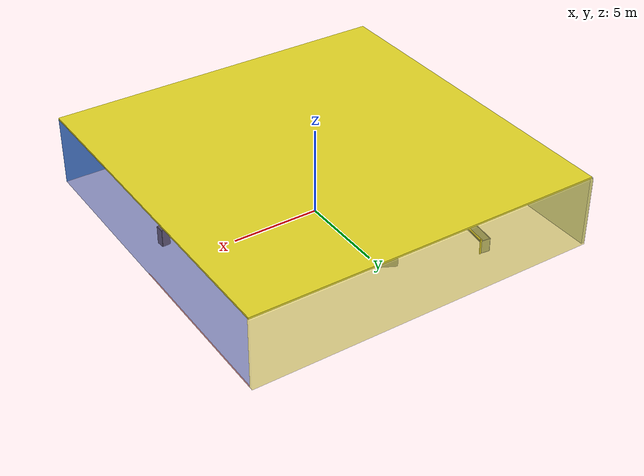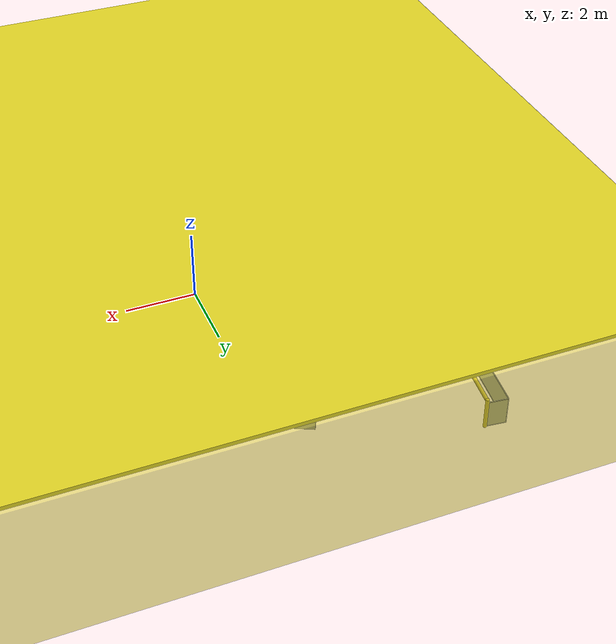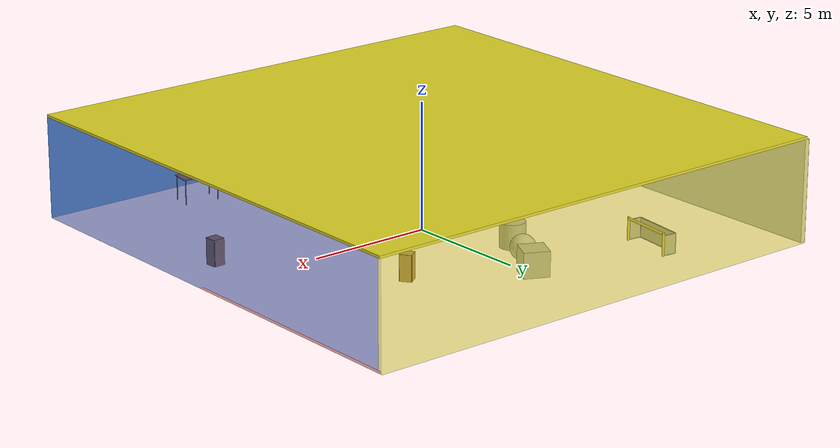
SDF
<sdf version="1.4">
 <world name="default">
  <physics type="ode">
   <max_step_size>0.001</max_step_size>
   <real_time_factor>1</real_time_factor>
   <real_time_update_rate>1000</real_time_update_rate>
   <gravity>0 0 -9.8</gravity>
  </physics>
  <scene><ambient>0.4 0.4 0.4 1</ambient><background>0.7 0.7 0.7 1</background><shadows>1</shadows></scene>
  <model name="Surrounding">
   <static>1</static>
   <link name="Ceiling">
    <collision name="Ceiling_Collision"><geometry><box><size>20 20 0.1</size></box></geometry></collision>
    <visual name="Ceiling_Visual">
     <geometry><box><size>20 20 0.1</size></box></geometry>
     <material>
      <script><uri>file://media/materials/scripts/gazebo.material</uri><name>Gazebo/YellowGlow</name></script>
     </material>
    </visual>
    <pose>0 0 4.05 0 0 0</pose>
   </link>
   <link name="Wall_South">
    <collision name="Wall_South_Collision">
     <geometry><box><size>20 0 4</size></box></geometry>
     <pose>0 0 2 0 -0 0</pose>
    </collision>
    <visual name="Wall_South_Visual">
     <pose>0 0 2 0 -0 0</pose>
     <geometry><box><size>20 0 4</size></box></geometry>
     <material>
      <script><uri>file://media/materials/scripts/gazebo.material</uri><name>Gazebo/SkyBlue</name></script>
     </material>
    </visual>
    <velocity_decay><linear>0</linear><angular>0</angular></velocity_decay>
    <pose>0 -10 0 0 -0 0</pose>
   </link>
   <link name="Wall_East">
    <collision name="Wall_21_Collision">
     <geometry><box><size>20 0 4</size></box></geometry>
     <pose>0 0 2 0 -0 0</pose>
    </collision>
    <visual name="Wall_21_Visual">
     <pose>0 0 2 0 -0 0</pose>
     <geometry><box><size>20 0 4</size></box></geometry>
     <material>
      <script><uri>file://media/materials/scripts/gazebo.material</uri><name>Gazebo/BlueTransparent</name></script>
     </material>
    </visual>
    <velocity_decay><linear>0</linear><angular>0</angular></velocity_decay>
    <pose>10 0 0 0 -0 1.5708</pose>
   </link>
   <link name="Wall_North">
    <collision name="Wall_22_Collision">
     <geometry><box><size>20 0.2 4</size></box></geometry>
     <pose>0 0 2 0 -0 0</pose>
    </collision>
    <visual name="Wall_22_Visual">
     <pose>0 0 2 0 -0 0</pose>
     <geometry><box><size>20 0.2 4</size></box></geometry>
     <material>
      <script>
       <uri>file://media/materials/scripts/gazebo.material</uri>
       <name>Gazebo/YellowTransparent</name>
      </script>
     </material>
    </visual>
    <velocity_decay><linear>0</linear><angular>0</angular></velocity_decay>
    <pose>0 10 0 0 -0 0</pose>
   </link>
   <link name="Wall_West">
    <collision name="Wall_23_Collision">
     <geometry><box><size>20 0.2 4</size></box></geometry>
     <pose>0 0 2 0 -0 0</pose>
    </collision>
    <visual name="Wall_23_Visual">
     <pose>0 0 2 0 -0 0</pose>
     <geometry><box><size>20 0.2 4</size></box></geometry>
     <material>
      <script><uri>file://media/materials/scripts/gazebo.material</uri><name>Gazebo/White</name></script>
     </material>
    </visual>
    <velocity_decay><linear>0</linear><angular>0</angular></velocity_decay>
    <pose>-10 0 0 0 0 -1.5708</pose>
   </link>
   <link name="Ground_link">
    <collision name="collision">
     <pose>0 0 .05 0 -0 0</pose>
     <geometry><box><size>20 20 0.1</size></box></geometry>
    </collision>
    <visual name="visual">
     <pose>0 0 .05 0 -0 0</pose>
     <geometry><box><size>20 20 0.1</size></box></geometry>
     <material>
      <script><uri>file://media/materials/scripts/gazebo.material</uri><name>Gazebo/RedTransparent</name></script>
     </material>
    </visual>
   </link>
   <static>1</static>
  </model>
  <spherical_coordinates>
   <surface_model>EARTH_WGS84</surface_model>
   <latitude_deg>0</latitude_deg>
   <longitude_deg>0</longitude_deg>
   <elevation>0</elevation>
   <heading_deg>0</heading_deg>
  </spherical_coordinates>
  <light name="lightball_0" type="diffuse">
   <diffuse>0.8 0.8 0.8 1</diffuse>
   <specular>0.2 0.2 0.2 1</specular>
   <attenuation>
    <range>100</range>
    <constant>0.7</constant>
    <linear>0.01</linear>
    <quadratic>0.001</quadratic>
   </attenuation>
   <direction>-0.5 0.1 -0.9</direction>
   <pose>3.07171105056 -2.03453169366 2.83117100156 0 0 0</pose>
  </light>
  <light name="lightball_1" type="diffuse">
   <diffuse>0.8 0.8 0.8 1</diffuse>
   <specular>0.2 0.2 0.2 1</specular>
   <attenuation>
    <range>100</range>
    <constant>0.7</constant>
    <linear>0.01</linear>
    <quadratic>0.001</quadratic>
   </attenuation>
   <direction>-0.5 0.1 -0.9</direction>
   <pose>-1.55576573711 -9.55629490979 2.77373398317 0 0 0</pose>
  </light>
  <light name="lightball_2" type="diffuse">
   <diffuse>0.8 0.8 0.8 1</diffuse>
   <specular>0.2 0.2 0.2 1</specular>
   <attenuation>
    <range>100</range>
    <constant>0.7</constant>
    <linear>0.01</linear>
    <quadratic>0.001</quadratic>
   </attenuation>
   <direction>-0.5 0.1 -0.9</direction>
   <pose>2.91532174058 5.14140625001 1.67651468738 0 0 0</pose>
  </light>
  <light name="lightball_3" type="diffuse">
   <diffuse>0.8 0.8 0.8 1</diffuse>
   <specular>0.2 0.2 0.2 1</specular>
   <attenuation>
    <range>100</range>
    <constant>0.7</constant>
    <linear>0.01</linear>
    <quadratic>0.001</quadratic>
   </attenuation>
   <direction>-0.5 0.1 -0.9</direction>
   <pose>4.00542751553 5.6648913806 1.98033525857 0 0 0</pose>
  </light>
  <light name="lightball_4" type="diffuse">
   <diffuse>0.8 0.8 0.8 1</diffuse>
   <specular>0.2 0.2 0.2 1</specular>
   <attenuation>
    <range>100</range>
    <constant>0.7</constant>
    <linear>0.01</linear>
    <quadratic>0.001</quadratic>
   </attenuation>
   <direction>-0.5 0.1 -0.9</direction>
   <pose>3.71070767748 -5.33318261108 2.95047385636 0 0 0</pose>
  </light>
  <light name="lightball_5" type="diffuse">
   <diffuse>0.8 0.8 0.8 1</diffuse>
   <specular>0.2 0.2 0.2 1</specular>
   <attenuation>
    <range>100</range>
    <constant>0.7</constant>
    <linear>0.01</linear>
    <quadratic>0.001</quadratic>
   </attenuation>
   <direction>-0.5 0.1 -0.9</direction>
   <pose>-4.47212638336 -8.63478261652 3.64404261544 0 0 0</pose>
  </light>
  <light name="lightball_6" type="diffuse">
   <diffuse>0.8 0.8 0.8 1</diffuse>
   <specular>0.2 0.2 0.2 1</specular>
   <attenuation>
    <range>100</range>
    <constant>0.7</constant>
    <linear>0.01</linear>
    <quadratic>0.001</quadratic>
   </attenuation>
   <direction>-0.5 0.1 -0.9</direction>
   <pose>-4.6977609903 -7.6265969506 1.24266196798 0 0 0</pose>
  </light>
  <light name="lightball_7" type="diffuse">
   <diffuse>0.8 0.8 0.8 1</diffuse>
   <specular>0.2 0.2 0.2 1</specular>
   <attenuation>
    <range>100</range>
    <constant>0.7</constant>
    <linear>0.01</linear>
    <quadratic>0.001</quadratic>
   </attenuation>
   <direction>-0.5 0.1 -0.9</direction>
   <pose>-2.8988198472 0.398115508286 3.80526513679 0 0 0</pose>
  </light>
  <light name="lightball_8" type="diffuse">
   <diffuse>0.8 0.8 0.8 1</diffuse>
   <specular>0.2 0.2 0.2 1</specular>
   <attenuation>
    <range>100</range>
    <constant>0.7</constant>
    <linear>0.01</linear>
    <quadratic>0.001</quadratic>
   </attenuation>
   <direction>-0.5 0.1 -0.9</direction>
   <pose>9.66451978363 -9.210069933 1.98357044655 0 0 0</pose>
  </light>
  <light name="lightball_9" type="diffuse">
   <diffuse>0.8 0.8 0.8 1</diffuse>
   <specular>0.2 0.2 0.2 1</specular>
   <attenuation>
    <range>100</range>
    <constant>0.7</constant>
    <linear>0.01</linear>
    <quadratic>0.001</quadratic>
   </attenuation>
   <direction>-0.5 0.1 -0.9</direction>
   <pose>-5.62350894925 -8.55233771937 2.6465265505 0 0 0</pose>
  </light>
  <light name="lightball_10" type="diffuse">
   <diffuse>0.8 0.8 0.8 1</diffuse>
   <specular>0.2 0.2 0.2 1</specular>
   <attenuation>
    <range>100</range>
    <constant>0.7</constant>
    <linear>0.01</linear>
    <quadratic>0.001</quadratic>
   </attenuation>
   <direction>-0.5 0.1 -0.9</direction>
   <pose>-3.66441246485 0.594482535073 0.689598297612 0 0 0</pose>
  </light>
  <include>
   <uri>model://construction_cone</uri>
   <pose>-7.22569593985 -4.19157430822 0 0 0 2.49320675225</pose>
  </include>
  <include>
   <uri>model://robocup_3Dsim_goal</uri>
   <pose>-5.07004833911 6.75711206855 0 0 0 3.02747693195</pose>
  </include>
  <include><uri>model://cabinet</uri><pose>-1.18918518509 1.07850765082 0 0 0 0.160448414125</pose></include>
  <include>
   <uri>model://textured_shapes</uri>
   <pose>-1.65628029653 3.81588916125 0 0 0 2.67846091192</pose>
  </include>
  <include><uri>model://table</uri><pose>4.470503376 -8.25729109187 0 0 0 2.98515848014</pose></include>
  <include><uri>model://cabinet</uri><pose>3.79486649676 3.75831737301 0 0 0 0.619279666269</pose></include>
  <include><uri>model://cabinet</uri><pose>8.13760241613 -1.87986628259 0 0 0 0.0655931865303</pose></include>
 </world>
</sdf>

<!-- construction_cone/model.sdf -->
<sdf version="1.5">
  <model name="Construction Cone">
    <link name="link">
      <collision name="collision">
        <geometry>
          <mesh>
            <scale>10 10 10</scale>
            <uri>file://isr-testbed/construction_cone/meshes/construction_cone.dae</uri>
          </mesh>
        </geometry>
      </collision>
      <visual name="visual">
        <geometry>
          <mesh>
            <scale>10 10 10</scale>
            <uri>file://isr-testbed/construction_cone/meshes/construction_cone.dae</uri>
          </mesh>
        </geometry>
      </visual>
    </link>
  </model>
</sdf>

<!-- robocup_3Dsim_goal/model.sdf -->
<sdf version="1.5">
  <model name="robocup_3d_goal">
    <static>true</static>
    <link name="left_post">
      <pose>0 1.05 0.45 0 0 0</pose>
      <collision name="collision">
        <geometry>
          <cylinder>
            <radius>0.05</radius>
            <length>0.9</length>
          </cylinder>
        </geometry>
      </collision>
      <visual name="visual">
        <geometry>
          <cylinder>
            <radius>0.05</radius>
            <length>0.9</length>
          </cylinder>
        </geometry>
        <material>
          <script>
            <uri>file://media/materials/scripts/gazebo.material</uri>
            <name>Gazebo/ZincYellow</name>
          </script>
        </material>
      </visual>
    </link>
    <link name="left_support_horiz_lower">
      <pose>0.30 1.05 0.01 0 0 0</pose>
      <collision name="collision">
        <geometry>
          <box>
            <size>0.50 0.02 0.02</size>
          </box>
        </geometry>
      </collision>
      <visual name="visual">
        <geometry>
          <box>
            <size>0.50 0.02 0.02</size>
          </box>
        </geometry>
        <material>
          <script>
            <uri>file://media/materials/scripts/gazebo.material</uri>
            <name>Gazebo/White</name>
          </script>
        </material>
      </visual>
    </link>
    <link name="left_support_horiz_upper">
      <pose>0.30 1.05 0.79 0 0 0</pose>
      <collision name="collision">
        <geometry>
          <box>
            <size>0.50 0.02 0.02</size>
          </box>
        </geometry>
      </collision>
      <visual name="visual">
        <geometry>
          <box>
            <size>0.50 0.02 0.02</size>
          </box>
        </geometry>
        <material>
          <script>
            <uri>file://media/materials/scripts/gazebo.material</uri>
            <name>Gazebo/White</name>
          </script>
        </material>
      </visual>
    </link>
    <link name="left_support_vertical">
      <pose>0.56 1.05 0.4 0 1.5708 0</pose>
      <collision name="collision">
        <geometry>
          <box>
            <size>0.80 0.02 0.02</size>
          </box>
        </geometry>
      </collision>
      <visual name="visual">
        <geometry>
          <box>
            <size>0.80 0.02 0.02</size>
          </box>
        </geometry>
        <material>
          <script>
            <uri>file://media/materials/scripts/gazebo.material</uri>
            <name>Gazebo/White</name>
          </script>
        </material>
      </visual>
    </link>
    <link name="right_support_horiz_lower">
      <pose>0.30 -1.05 0.01 0 0 0</pose>
      <collision name="collision">
        <geometry>
          <box>
            <size>0.50 0.02 0.02</size>
          </box>
        </geometry>
      </collision>
      <visual name="visual">
        <geometry>
          <box>
            <size>0.50 0.02 0.02</size>
          </box>
        </geometry>
        <material>
          <script>
            <uri>file://media/materials/scripts/gazebo.material</uri>
            <name>Gazebo/White</name>
          </script>
        </material>
      </visual>
    </link>
    <link name="right_support_horiz_upper">
      <pose>0.30 -1.05 0.79 0 0 0</pose>
      <collision name="collision">
        <geometry>
          <box>
            <size>0.50 0.02 0.02</size>
          </box>
        </geometry>
      </collision>
      <visual name="visual">
        <geometry>
          <box>
            <size>0.50 0.02 0.02</size>
          </box>
        </geometry>
        <material>
          <script>
            <uri>file://media/materials/scripts/gazebo.material</uri>
            <name>Gazebo/White</name>
          </script>
        </material>
      </visual>
    </link>
    <link name="right_support_vertical">
      <pose>0.56 -1.05 0.4 0 1.5708 0</pose>
      <collision name="collision">
        <geometry>
          <box>
            <size>0.80 0.02 0.02</size>
          </box>
        </geometry>
      </collision>
      <visual name="visual">
        <geometry>
          <box>
            <size>0.80 0.02 0.02</size>
          </box>
        </geometry>
        <material>
          <script>
            <uri>file://media/materials/scripts/gazebo.material</uri>
            <name>Gazebo/White</name>
          </script>
        </material>
      </visual>
    </link>
    <link name="center_support_horiz_lower">
      <pose>0.56 0 0.01 0 1.5708 0</pose>
      <collision name="collision">
        <geometry>
          <box>
            <size>0.02 2.08 0.02</size>
          </box>
        </geometry>
      </collision>
      <visual name="visual">
        <geometry>
          <box>
            <size>0.02 2.08 0.02</size>
          </box>
        </geometry>
        <material>
          <script>
            <uri>file://media/materials/scripts/gazebo.material</uri>
            <name>Gazebo/White</name>
          </script>
        </material>
      </visual>
    </link>
    <link name="center_support_horiz_upper">
      <pose>0.56 0 0.79 0 1.5708 0</pose>
      <collision name="collision">
        <geometry>
          <box>
            <size>0.02 2.08 0.02</size>
          </box>
        </geometry>
      </collision>
      <visual name="visual">
        <geometry>
          <box>
            <size>0.02 2.08 0.02</size>
          </box>
        </geometry>
        <material>
          <script>
            <uri>file://media/materials/scripts/gazebo.material</uri>
            <name>Gazebo/White</name>
          </script>
        </material>
      </visual>
    </link>
    <link name="right_post">
      <pose>0 -1.05 0.45 0 0 0</pose>
      <collision name="collision">
        <geometry>
          <cylinder>
            <radius>0.05</radius>
            <length>0.9</length>
          </cylinder>
        </geometry>
      </collision>
      <visual name="visual">
        <geometry>
          <cylinder>
            <radius>0.05</radius>
            <length>0.9</length>
          </cylinder>
        </geometry>
        <material>
          <script>
            <uri>file://media/materials/scripts/gazebo.material</uri>
            <name>Gazebo/ZincYellow</name>
          </script>
        </material>
      </visual>
    </link>
    <link name="crossbar">
      <pose>0 0 0.85 1.57 1.57 0</pose>
      <collision name="collision">
        <geometry>
          <cylinder>
            <radius>0.05</radius>
            <length>2.0</length>
          </cylinder>
        </geometry>
      </collision>
      <visual name="visual">
        <geometry>
          <cylinder>
            <radius>0.05</radius>
            <length>2.0</length>
          </cylinder>
        </geometry>
        <material>
          <script>
            <uri>file://media/materials/scripts/gazebo.material</uri>
            <name>Gazebo/ZincYellow</name>
          </script>
        </material>
      </visual>
    </link>
    <link name="center_net">
      <pose>0.56 0 0.40 0 0 0</pose>
      <collision name="collision">
        <geometry>
          <box>
            <size>0.01 2.1 0.80</size>
          </box>
        </geometry>
      </collision>
      <visual name="visual">
        <geometry>
          <box>
            <size>0.01 2.1 0.80</size>
          </box>
        </geometry>
        <material>
          <script>
            <uri>model://../model_source/models/robocup09_spl_field/materials/scripts/</uri>
            <uri>model://../model_source/models/robocup09_spl_field/materials/textures/</uri>
            <name>RoboCup/Net</name>
          </script>
        </material>
      </visual>
    </link>
    <link name="left_net">
      <pose>0.30 1.05 0.40 0 0 0</pose>
      <collision name="collision">
        <geometry>
          <box>
            <size>0.50 0.01 0.76</size>
          </box>
        </geometry>
      </collision>
      <visual name="visual">
        <geometry>
          <box>
            <size>0.50 0.01 0.76</size>
          </box>
        </geometry>
        <material>
          <script>
            <uri>model://../model_source/models/robocup09_spl_field/materials/scripts/</uri>
            <uri>model://../model_source/models/robocup09_spl_field/materials/textures/</uri>
            <name>RoboCup/Net</name>
          </script>
        </material>
      </visual>
    </link>
    <link name="right_net">
      <pose>0.30 -1.05 0.40 0 0 0</pose>
      <collision name="collision">
        <geometry>
          <box>
            <size>0.50 0.01 0.76</size>
          </box>
        </geometry>
      </collision>
      <visual name="visual">
        <geometry>
          <box>
            <size>0.50 0.01 0.76</size>
          </box>
        </geometry>
        <material>
          <script>
            <uri>model://../model_source/models/robocup09_spl_field/materials/scripts/</uri>
            <uri>model://../model_source/models/robocup09_spl_field/materials/textures/</uri>
            <name>RoboCup/Net</name>
          </script>
        </material>
      </visual>
    </link>
  </model>
</sdf>

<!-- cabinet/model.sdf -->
<sdf version="1.5">
  <model name="cabinet">
    <static>true</static>
    <link name="cabinet_bottom_plate">
      <inertial>
        <pose>0 0 -1 0 0 0</pose>
        <inertia>
          <ixx>2.050000</ixx>
          <ixy>0</ixy>
          <ixz>0</ixz>
          <iyy>2.050000</iyy>
          <iyz>0</iyz>
          <izz>2.050000</izz>
        </inertia>
        <mass>25.000000</mass>
      </inertial>
      <collision name="cabinet_bottom_plate_geom">
        <pose>0 0 0.010000 0 0 0</pose>
        <geometry>
          <box>
            <size>0.450000 0.450000 0.020000</size>
          </box>
        </geometry>
      </collision>
      <visual name="cabinet_bottom_plate_geom_visual">
        <pose>0 0 0.010000 0 0 0</pose>
        <geometry>
          <box>
            <size>0.450000 0.450000 0.020000</size>
          </box>
        </geometry>
        <material>
          <script>
            <uri>model://media/materials/scripts/gazebo.material</uri>
            <name>Gazebo/Wood</name>
          </script>
        </material>
      </visual>
      <collision name="cabinet_bottom_plate_geom_cabinet_back_plate">
        <pose>0.235000 0 0.510000 0 0 0</pose>
        <geometry>
          <box>
            <size>0.020000 0.450000 1.020000</size>
          </box>
        </geometry>
      </collision>
      <visual name="cabinet_bottom_plate_geom_cabinet_back_plate_visual">
        <pose>0.235000 0 0.510000 0 0 0</pose>
        <geometry>
          <box>
            <size>0.020000 0.450000 1.020000</size>
          </box>
        </geometry>
        <material>
          <script>
            <uri>model://media/materials/scripts/gazebo.material</uri>
            <name>Gazebo/Wood</name>
          </script>
        </material>
      </visual>
      <collision name="cabinet_bottom_plate_geom_cabinet_left_plate">
        <pose>0 0.235000 0.510000 0 0 0</pose>
        <geometry>
          <box>
            <size>0.450000 0.020000 1.020000</size>
          </box>
        </geometry>
      </collision>
      <visual name="cabinet_bottom_plate_geom_cabinet_left_plate_visual">
        <pose>0 0.235000 0.510000 0 0 0</pose>
        <geometry>
          <box>
            <size>0.450000 0.020000 1.020000</size>
          </box>
        </geometry>
        <material>
          <script>
            <uri>model://media/materials/scripts/gazebo.material</uri>
            <name>Gazebo/Wood</name>
          </script>
        </material>
      </visual>
      <collision name="cabinet_bottom_plate_geom_cabinet_middle_plate">
        <pose>0 0 0.510000 0 0 0</pose>
        <geometry>
          <box>
            <size>0.450000 0.450000 0.020000</size>
          </box>
        </geometry>
      </collision>
      <visual name="cabinet_bottom_plate_geom_cabinet_middle_plate_visual">
        <pose>0 0 0.510000 0 0 0</pose>
        <geometry>
          <box>
            <size>0.450000 0.450000 0.020000</size>
          </box>
        </geometry>
        <material>
          <script>
            <uri>model://media/materials/scripts/gazebo.material</uri>
            <name>Gazebo/Wood</name>
          </script>
        </material>
      </visual>
      <collision name="cabinet_bottom_plate_geom_cabinet_right_plate">
        <pose>0 -0.235000 0.510000 0 0 0</pose>
        <geometry>
          <box>
            <size>0.450000 0.020000 1.020000</size>
          </box>
        </geometry>
      </collision>
      <visual name="cabinet_bottom_plate_geom_cabinet_right_plate_visual">
        <pose>0 -0.235000 0.510000 0 0 0</pose>
        <geometry>
          <box>
            <size>0.450000 0.020000 1.020000</size>
          </box>
        </geometry>
        <material>
          <script>
            <uri>model://media/materials/scripts/gazebo.material</uri>
            <name>Gazebo/Wood</name>
          </script>
        </material>
      </visual>
      <collision name="cabinet_bottom_plate_geom_cabinet_top_plate">
        <pose>0 0 1.010000 0 0 0</pose>
        <geometry>
          <box>
            <size>0.450000 0.450000 0.020000</size>
          </box>
        </geometry>
      </collision>
      <visual name="cabinet_bottom_plate_geom_cabinet_top_plate_visual">
        <pose>0 0 1.010000 0 0 0</pose>
        <geometry>
          <box>
            <size>0.450000 0.450000 0.020000</size>
          </box>
        </geometry>
        <material>
          <script>
            <uri>model://media/materials/scripts/gazebo.material</uri>
            <name>Gazebo/Wood</name>
          </script>
        </material>
      </visual>
    </link>
  </model>
</sdf>

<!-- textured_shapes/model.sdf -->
<sdf version="1.6">
  <model name="textured_shapes">
    <pose>0 0 0.5 0 0 0</pose>
    <link name="box">
      <pose>0 -1.5 0 0 0 0</pose>
      <collision name="collision">
        <geometry>
          <box>
            <size>1 1 1</size>
          </box>
        </geometry>
      </collision>
      <visual name="visual">
        <geometry>
          <box>
            <size>1 1 1</size>
          </box>
        </geometry>
        <material>
          <script>
            <uri>model://../model_source/models/textured_shapes/materials/scripts</uri>
            <uri>model://../model_source/models/textured_shapes/materials/textures</uri>
            <name>TexturedShape/Squares</name>
          </script>
        </material>
      </visual>
    </link>
    <link name="sphere">
      <collision name="collision">
        <geometry>
          <sphere>
            <radius>0.5</radius>
          </sphere>
        </geometry>
      </collision>
      <visual name="visual">
        <geometry>
          <sphere>
            <radius>0.5</radius>
          </sphere>
        </geometry>
        <material>
          <script>
            <uri>model://../model_source/models/textured_shapes/materials/scripts</uri>
            <uri>model://../model_source/models/textured_shapes/materials/textures</uri>
            <name>TexturedShape/Squares</name>
          </script>
        </material>
      </visual>
    </link>
    <link name="cylinder">
      <pose>0 1.5 0 0 0 0</pose>
      <collision name="collision">
        <geometry>
          <cylinder>
            <radius>0.5</radius>
            <length>1</length>
          </cylinder>
        </geometry>
      </collision>
      <visual name="visual">
        <geometry>
          <cylinder>
            <radius>0.5</radius>
            <length>1</length>
          </cylinder>
        </geometry>
        <material>
          <script>
            <uri>model://../model_source/models/textured_shapes/materials/scripts</uri>
            <uri>model://../model_source/models/textured_shapes/materials/textures</uri>
            <name>TexturedShape/Squares</name>
          </script>
        </material>
      </visual>
    </link>
  </model>
</sdf>

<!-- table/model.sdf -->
<sdf version="1.5">
  <model name="table">
    <static>true</static>
    <link name="link">
      <collision name="surface">
        <pose>0 0 1.0 0 0 0</pose>
        <geometry>
          <box>
            <size>1.5 0.8 0.03</size>
          </box>
        </geometry>
        <surface>
          <friction>
            <ode>
              <mu>0.6</mu>
              <mu2>0.6</mu2>
            </ode>
          </friction>
        </surface>
      </collision>
      <visual name="visual1">
        <pose>0 0 1.0 0 0 0</pose>
        <geometry>
          <box>
            <size>1.5 0.8 0.03</size>
          </box>
        </geometry>
        <material>
          <script>
            <uri>model://media/materials/scripts/gazebo.material</uri>
            <name>Gazebo/Wood</name>
          </script>
        </material>
      </visual>
      <collision name="front_left_leg">
        <pose>0.68 0.38 0.5 0 0 0</pose>
        <geometry>
          <cylinder>
            <radius>0.02</radius>
            <length>1.0</length>
          </cylinder>
        </geometry>
      </collision>
      <visual name="front_left_leg">
        <pose>0.68 0.38 0.5 0 0 0</pose>
        <geometry>
          <cylinder>
            <radius>0.02</radius>
            <length>1.0</length>
          </cylinder>
        </geometry>
        <material>
          <script>
            <uri>model://media/materials/scripts/gazebo.material</uri>
            <name>Gazebo/Grey</name>
          </script>
        </material>
      </visual>
      <collision name="front_right_leg">
        <pose>0.68 -0.38 0.5 0 0 0</pose>
        <geometry>
          <cylinder>
            <radius>0.02</radius>
            <length>1.0</length>
          </cylinder>
        </geometry>
      </collision>
      <visual name="front_right_leg">
        <pose>0.68 -0.38 0.5 0 0 0</pose>
        <geometry>
          <cylinder>
            <radius>0.02</radius>
            <length>1.0</length>
          </cylinder>
        </geometry>
        <material>
          <script>
            <uri>model://media/materials/scripts/gazebo.material</uri>
            <name>Gazebo/Grey</name>
          </script>
        </material>
      </visual>
      <collision name="back_right_leg">
        <pose>-0.68 -0.38 0.5 0 0 0</pose>
        <geometry>
          <cylinder>
            <radius>0.02</radius>
            <length>1.0</length>
          </cylinder>
        </geometry>
      </collision>
      <visual name="back_right_leg">
        <pose>-0.68 -0.38 0.5 0 0 0</pose>
        <geometry>
          <cylinder>
            <radius>0.02</radius>
            <length>1.0</length>
          </cylinder>
        </geometry>
        <material>
          <script>
            <uri>model://media/materials/scripts/gazebo.material</uri>
            <name>Gazebo/Grey</name>
          </script>
        </material>
      </visual>
      <collision name="back_left_leg">
        <pose>-0.68 0.38 0.5 0 0 0</pose>
        <geometry>
          <cylinder>
            <radius>0.02</radius>
            <length>1.0</length>
          </cylinder>
        </geometry>
      </collision>
      <visual name="back_left_leg">
        <pose>-0.68 0.38 0.5 0 0 0</pose>
        <geometry>
          <cylinder>
            <radius>0.02</radius>
            <length>1.0</length>
          </cylinder>
        </geometry>
        <material>
          <script>
            <uri>model://media/materials/scripts/gazebo.material</uri>
            <name>Gazebo/Grey</name>
          </script>
        </material>
      </visual>
    </link>
  </model>
</sdf>
